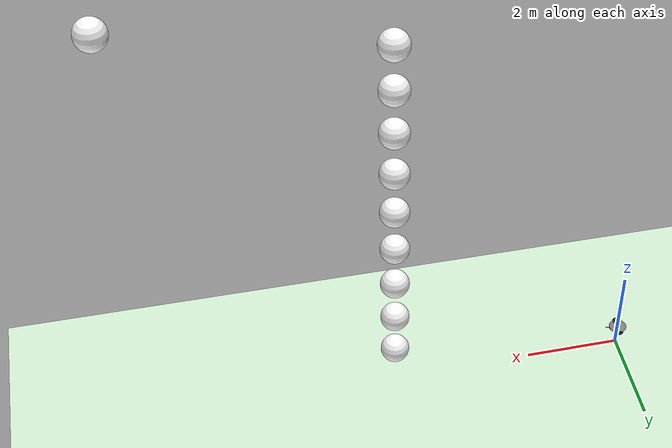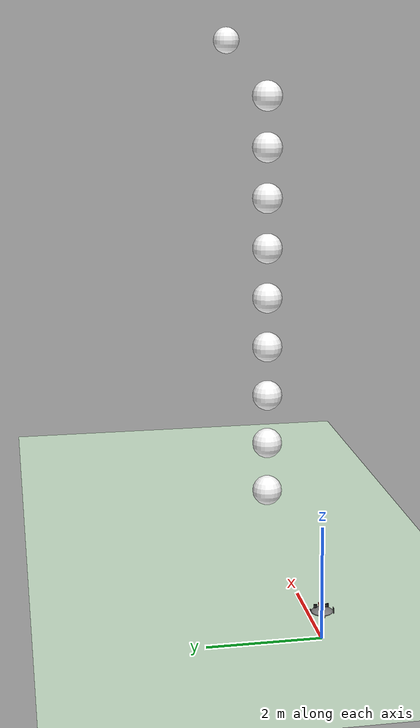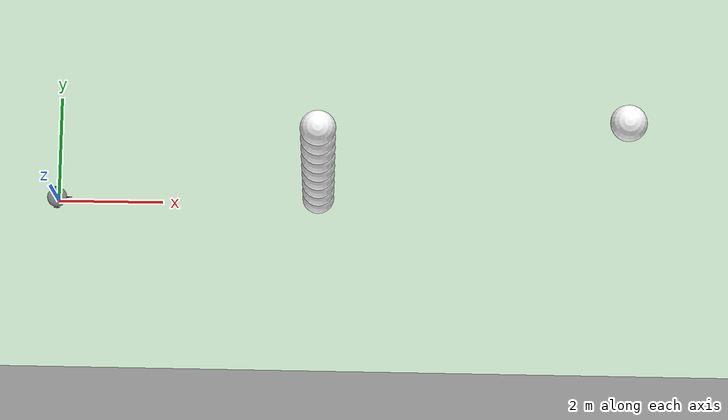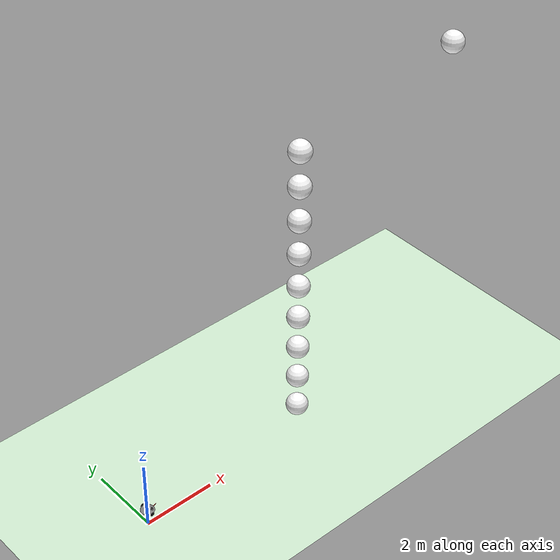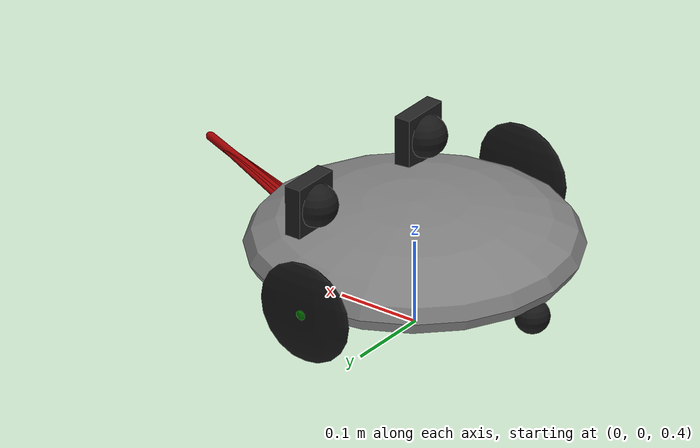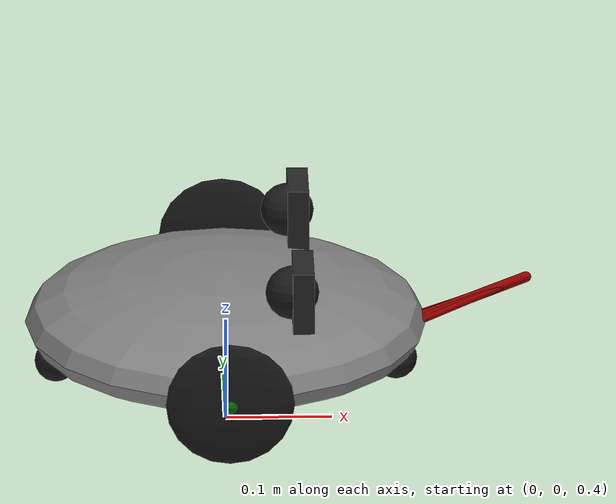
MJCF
<mujoco model="thing">
  <compiler angle="degree" coordinate="local" inertiafromgeom="true"/>
  <option integrator="RK4" />

  <default>
    <joint armature="1" damping="1" />
    <geom conaffinity="0" condim="3" density="5.0" friction="1 0.5 0.5" margin="0.01" />
  </default>

  <visual>
    <map znear="0.00001" />
  </visual>

  <asset>
    <texture builtin="gradient" height="100" rgb1="1 1 1" rgb2="0 0 0" type="skybox" width="100"/>
    <texture builtin="flat" height="1278" mark="cross" markrgb="1 1 1" name="texgeom" random="0.01" rgb1="0.8 0.6 0.4" rgb2="0.8 0.6 0.4" type="cube" width="127"/>
    <texture name="texplane" type="2d" builtin="flat" rgb1="0.6 0.5 0.25" rgb2="0.6 0.5 0.25" width="1" height="1" />
    <material name="MatPlane" texture="texplane" reflectance="0.01" shininess="0.01" specular="0.01" rgba="1 1 1 1" />
    <material name="geom" texture="texgeom" texuniform="true"/>
    <texture name="foodtexture" type="2d" file="food_texture.png"/>
    <material name="foodmaterial" reflectance="0.5" shininess="1" specular="0.2" texture="foodtexture"/>

    <material name="wheels" reflectance="0.2" shininess="0.21" specular="0.2" rgba="0.1 0.1 0.1 1"/>

  </asset>
  <worldbody>
    <light cutoff="100" diffuse="1 1 1" dir="-0 0 -1.3" directional="true" exponent="1" pos="0 0 1.3" specular=".1 .1 .1"/>
    <geom conaffinity="1" condim="3" material="MatPlane" name="floor" pos="0 0 0" rgba="0.8 0.9 0.8 1" size="40 40 40" type="plane"/>

    <body name="food_body_1" pos="5.0 0.0 1.">
      <geom rgba="1. 1. 1. 1" name="food_geom_1" type="sphere" size="0.3 0.3 0.3" density='5' contype="1" material="foodmaterial" conaffinity="1"/>
      <joint name="food_free_1" type="free" armature='0' damping="0" limited="false" frictionloss="0.2" />
    </body>

    <body name="food_body_2" pos="5.0 0.0 2.">
      <geom rgba="1. 1. 1. 1" name="food_geom_2" type="sphere" size="0.3 0.3 0.3" density='5' contype="1" material="foodmaterial" conaffinity="1"/>
      <joint name="food_free_2" type="free" armature='0' damping="0" limited="false" frictionloss="0.2" />
    </body>

    <body name="food_body_3" pos="5.0 0.0 3.">
      <geom rgba="1. 1. 1. 1" name="food_geom_3" type="sphere" size="0.3 0.3 0.3" density='5' contype="1" material="foodmaterial" conaffinity="1"/>
      <joint name="food_free_3" type="free" armature='0' damping="0" limited="false" frictionloss="0.2" />
    </body>

    <body name="food_body_4" pos="5.0 0.0 4.">
      <geom rgba="1. 1. 1. 1" name="food_geom_4" type="sphere" size="0.3 0.3 0.3" density='5' contype="1" material="foodmaterial" conaffinity="1"/>
      <joint name="food_free_4" type="free" armature='0' damping="0" limited="false" frictionloss="0.2" />
    </body>

    <body name="food_body_5" pos="5.0 0.0 5.">
      <geom rgba="1. 1. 1. 1" name="food_geom_5" type="sphere" size="0.3 0.3 0.3" density='5' contype="1" material="foodmaterial" conaffinity="1"/>
      <joint name="food_free_5" type="free" armature='0' damping="0" limited="false" frictionloss="0.2" />
    </body>

    <body name="food_body_6" pos="5.0 0.0 6.">
      <geom rgba="1. 1. 1. 1" name="food_geom_6" type="sphere" size="0.3 0.3 0.3" density='5' contype="1" material="foodmaterial" conaffinity="1"/>
      <joint name="food_free_6" type="free" armature='0' damping="0" limited="false" frictionloss="0.2" />
    </body>

    <body name="food_body_7" pos="5.0 0.0 7.">
      <geom rgba="1. 1. 1. 1" name="food_geom_7" type="sphere" size="0.3 0.3 0.3" density='5' contype="1" material="foodmaterial" conaffinity="1"/>
      <joint name="food_free_7" type="free" armature='0' damping="0" limited="false" frictionloss="0.2" />
    </body>

    <body name="food_body_8" pos="5.0 0.0 8.">
      <geom rgba="1. 1. 1. 1" name="food_geom_8" type="sphere" size="0.3 0.3 0.3" density='5' contype="1" material="foodmaterial" conaffinity="1"/>
      <joint name="food_free_8" type="free" armature='0' damping="0" limited="false" frictionloss="0.2" />
    </body>

    <body name="food_body_9" pos="5.0 0.0 9.">
      <geom rgba="1. 1. 1. 1" name="food_geom_9" type="sphere" size="0.3 0.3 0.3" density='5' contype="1" material="foodmaterial" conaffinity="1"/>
      <joint name="food_free_9" type="free" armature='0' damping="0" limited="false" frictionloss="0.2" />
    </body>

    <body name="food_body_10" pos="10.0 0.0 10.">
      <geom rgba="1. 1. 1. 1" name="food_geom_10" type="sphere" size="0.3 0.3 0.3" density='5' contype="1" material="foodmaterial" conaffinity="1"/>
      <joint name="food_free_10" type="free" armature='0' damping="0" limited="false" frictionloss="0.2" />
    </body>

    <body name="food_body_11" pos="5.0 0.0 1.">
      <geom rgba="1. 1. 1. 1" name="food_geom_11" type="sphere" size="0.3 0.3 0.3" density='5' contype="1" material="foodmaterial" conaffinity="1"/>
      <joint name="food_free_11" type="free" armature='0' damping="0" limited="false" frictionloss="0.2" />
    </body>

    <body name="food_body_12" pos="5.0 0.0 2.">
      <geom rgba="1. 1. 1. 1" name="food_geom_12" type="sphere" size="0.3 0.3 0.3" density='5' contype="1" material="foodmaterial" conaffinity="1"/>
      <joint name="food_free_12" type="free" armature='0' damping="0" limited="false" frictionloss="0.2" />
    </body>

    <body name="food_body_13" pos="5.0 0.0 3.">
      <geom rgba="1. 1. 1. 1" name="food_geom_13" type="sphere" size="0.3 0.3 0.3" density='5' contype="1" material="foodmaterial" conaffinity="1"/>
      <joint name="food_free_13" type="free" armature='0' damping="0" limited="false" frictionloss="0.2" />
    </body>

    <body name="food_body_14" pos="5.0 0.0 4.">
      <geom rgba="1. 1. 1. 1" name="food_geom_14" type="sphere" size="0.3 0.3 0.3" density='5' contype="1" material="foodmaterial" conaffinity="1"/>
      <joint name="food_free_14" type="free" armature='0' damping="0" limited="false" frictionloss="0.2" />
    </body>

    <body name="food_body_15" pos="5.0 0.0 5.">
      <geom rgba="1. 1. 1. 1" name="food_geom_15" type="sphere" size="0.3 0.3 0.3" density='5' contype="1" material="foodmaterial" conaffinity="1"/>
      <joint name="food_free_15" type="free" armature='0' damping="0" limited="false" frictionloss="0.2" />
    </body>

    <body name="food_body_16" pos="5.0 0.0 6.">
      <geom rgba="1. 1. 1. 1" name="food_geom_16" type="sphere" size="0.3 0.3 0.3" density='5' contype="1" material="foodmaterial" conaffinity="1"/>
      <joint name="food_free_16" type="free" armature='0' damping="0" limited="false" frictionloss="0.2" />
    </body>

    <body name="food_body_17" pos="5.0 0.0 7.">
      <geom rgba="1. 1. 1. 1" name="food_geom_17" type="sphere" size="0.3 0.3 0.3" density='5' contype="1" material="foodmaterial" conaffinity="1"/>
      <joint name="food_free_17" type="free" armature='0' damping="0" limited="false" frictionloss="0.2" />
    </body>

    <body name="food_body_18" pos="5.0 0.0 8.">
      <geom rgba="1. 1. 1. 1" name="food_geom_18" type="sphere" size="0.3 0.3 0.3" density='5' contype="1" material="foodmaterial" conaffinity="1"/>
      <joint name="food_free_18" type="free" armature='0' damping="0" limited="false" frictionloss="0.2" />
    </body>

    <body name="food_body_19" pos="5.0 0.0 9.">
      <geom rgba="1. 1. 1. 1" name="food_geom_19" type="sphere" size="0.3 0.3 0.3" density='5' contype="1" material="foodmaterial" conaffinity="1"/>
      <joint name="food_free_19" type="free" armature='0' damping="0" limited="false" frictionloss="0.2" />
    </body>

    <body name="food_body_20" pos="10.0 0.0 10.">
      <geom rgba="1. 1. 1. 1" name="food_geom_20" type="sphere" size="0.3 0.3 0.3" density='5' contype="1" material="foodmaterial" conaffinity="1"/>
      <joint name="food_free_20" type="free" armature='0' damping="0" limited="false" frictionloss="0.2" />
    </body>

    <body name="food_body_21" pos="5.0 0.0 1.">
      <geom rgba="1. 1. 1. 1" name="food_geom_21" type="sphere" size="0.3 0.3 0.3" density='5' contype="1" material="foodmaterial" conaffinity="1"/>
      <joint name="food_free_21" type="free" armature='0' damping="0" limited="false" frictionloss="0.2" />
    </body>

    <body name="food_body_22" pos="5.0 0.0 2.">
      <geom rgba="1. 1. 1. 1" name="food_geom_22" type="sphere" size="0.3 0.3 0.3" density='5' contype="1" material="foodmaterial" conaffinity="1"/>
      <joint name="food_free_22" type="free" armature='0' damping="0" limited="false" frictionloss="0.2" />
    </body>

    <body name="food_body_23" pos="5.0 0.0 3.">
      <geom rgba="1. 1. 1. 1" name="food_geom_23" type="sphere" size="0.3 0.3 0.3" density='5' contype="1" material="foodmaterial" conaffinity="1"/>
      <joint name="food_free_23" type="free" armature='0' damping="0" limited="false" frictionloss="0.2" />
    </body>

    <body name="food_body_24" pos="5.0 0.0 4.">
      <geom rgba="1. 1. 1. 1" name="food_geom_24" type="sphere" size="0.3 0.3 0.3" density='5' contype="1" material="foodmaterial" conaffinity="1"/>
      <joint name="food_free_24" type="free" armature='0' damping="0" limited="false" frictionloss="0.2" />
    </body>

    <body name="food_body_25" pos="5.0 0.0 5.">
      <geom rgba="1. 1. 1. 1" name="food_geom_25" type="sphere" size="0.3 0.3 0.3" density='5' contype="1" material="foodmaterial" conaffinity="1"/>
      <joint name="food_free_25" type="free" armature='0' damping="0" limited="false" frictionloss="0.2" />
    </body>

    <body name="food_body_26" pos="5.0 0.0 6.">
      <geom rgba="1. 1. 1. 1" name="food_geom_26" type="sphere" size="0.3 0.3 0.3" density='5' contype="1" material="foodmaterial" conaffinity="1"/>
      <joint name="food_free_26" type="free" armature='0' damping="0" limited="false" frictionloss="0.2" />
    </body>

    <body name="food_body_27" pos="5.0 0.0 7.">
      <geom rgba="1. 1. 1. 1" name="food_geom_27" type="sphere" size="0.3 0.3 0.3" density='5' contype="1" material="foodmaterial" conaffinity="1"/>
      <joint name="food_free_27" type="free" armature='0' damping="0" limited="false" frictionloss="0.2" />
    </body>

    <body name="food_body_28" pos="5.0 0.0 8.">
      <geom rgba="1. 1. 1. 1" name="food_geom_28" type="sphere" size="0.3 0.3 0.3" density='5' contype="1" material="foodmaterial" conaffinity="1"/>
      <joint name="food_free_28" type="free" armature='0' damping="0" limited="false" frictionloss="0.2" />
    </body>

    <body name="food_body_29" pos="5.0 0.0 9.">
      <geom rgba="1. 1. 1. 1" name="food_geom_29" type="sphere" size="0.3 0.3 0.3" density='5' contype="1" material="foodmaterial" conaffinity="1"/>
      <joint name="food_free_29" type="free" armature='0' damping="0" limited="false" frictionloss="0.2" />
    </body>

    <body name="food_body_30" pos="10.0 0.0 10.">
      <geom rgba="1. 1. 1. 1" name="food_geom_30" type="sphere" size="0.3 0.3 0.3" density='5' contype="1" material="foodmaterial" conaffinity="1"/>
      <joint name="food_free_30" type="free" armature='0' damping="0" limited="false" frictionloss="0.2" />
    </body>

    <body name="torso" pos="0 0 0.5">
      <joint armature="0" damping="0" limited="false" margin="0.01" name="root" pos="0 0 0" type="free"/>
      <geom fromto="0.18 0.0 0.0  0.282 0.0 0.041" name="beak" size="0.005" type="capsule" rgba="0.6 0.0 0.0 1"/>
      <geom fromto="0.18 +0.01 0.0  0.28 0.0 0.04" size="0.003" type="capsule" rgba="0.6 0.0 0.0 1"/>
      <geom fromto="0.18 -0.01 0.0  0.28 0.0 0.04" size="0.003" type="capsule" rgba="0.6 0.0 0.0 1"/>
      <geom fromto="0.18 +0.005 0.0  0.28 0.0 0.04" size="0.004" type="capsule" rgba="0.6 0.0 0.0 1"/>
      <geom fromto="0.18 -0.005 0.0  0.28 0.0 0.04" size="0.004" type="capsule" rgba="0.6 0.0 0.0 1"/>

      <camera name="view1" mode="fixed" pos="0.2 +0.1 0.05" xyaxes="0 -1 0 0 0 1" fovy="120" />
      <camera name="view2" mode="fixed" pos="0.2 -0.1 0.05" xyaxes="0 -1 0 0 0 1" fovy="120" />
      <geom pos="0.07 +0.1 0.07" name="gviewL" size="0.01 0.03 0.03" type="box" rgba="0.14 0.14 0.14 1"/>
      <geom pos="0.06 +0.1 0.07" name="gviewL1" size="0.025" type="sphere" rgba="0.1 0.1 0.1 1"/>
      <geom pos="0.07 -0.1 0.07" name="gviewR" size="0.01 0.03 0.03" type="box" rgba="0.14 0.14 0.14 1"/>
      <geom pos="0.06 -0.1 0.07" name="gviewR1" size="0.025" type="sphere" rgba="0.1 0.1 0.1 1"/>

      <camera name="top_view" mode="fixed" pos="-1 0 3" xyaxes="0 -1 0   0.7 0 0.3"/>

      <site name="imu" />

      <geom name="torso_geom" pos="0 0 0.0" size="0.189 0.189 0.05" density="25" type="ellipsoid"/>

      <body name="front_center_leg" pos="0.16 0 -0.0398">
        <geom name="aux_1_geom" size="0.01" type="sphere"/>
        <body name="aux_1" pos="0 0 0">
          <joint axis="0 1 0" pos="0.0 0.0 0.0" damping="0" type="hinge"/>
          <geom name="fleg_geom" size="0.01" type="sphere"  />
          <body name="aux_12" pos="0 0 0">
            <joint axis="1 0 0" pos="0.0 0.0 0.0" damping="0" type="hinge"/>
            <geom name="fleg_geom2" size="0.02" type="sphere"  friction="0" material="wheels" />
          </body>
        </body>
      </body>
      <body name="back_center_leg" pos="-0.16 0 -0.0398">
        <geom name="baux_1_geom" size="0.01" type="sphere"/>
        <body name="baux_1" pos="0 0 0">
          <joint axis="0 1 0" pos="0.0 0.0 0.0" damping="0" type="hinge"/>
          <geom name="bleg_geom" size="0.01" type="sphere"  />
          <body name="baux_12" pos="0 0 0">
            <joint axis="1 0 0" pos="0.0 0.0 0.0" damping="0" type="hinge"/>
            <geom name="bleg_geom2" size="0.02" type="sphere"  friction="0" material="wheels" />
          </body>
        </body>
      </body>

      <body name="left_leg" pos="0 0.2 0">
        <geom rgba="0 0.45 0 1" name="aux_2_geom" size="0.01" type="sphere"/>
        <body name="aux_2" pos="0 0 0">
          <joint axis="0 1 0" name="joint_bl" pos="0 0 0" type="hinge"/>
          <geom name="bleft_leg_geom" size="0.06 0.008 0.06" type="ellipsoid" friction="1" material="wheels" />
        </body>
      </body>

      <body name="right_leg" pos="0 -0.2 0">
        <geom rgba="0 0.45 0 1" name="aux_3_geom" size="0.01" type="sphere" material="wheels" />
        <body name="aux_3" pos="0 0 0">
          <joint axis="0 1 0" name="joint_br" pos="0 0 0" type="hinge"/>
          <geom name="bright_leg_geom" size="0.06 0.008 0.06" type="ellipsoid" friction="1" material="wheels" />
        </body>
      </body>
    </body>

  </worldbody>
  <actuator>
    <velocity joint="joint_bl" kv="100" ctrllimited="true" ctrlrange="-30 30"/>
    <velocity joint="joint_br" kv="100" ctrllimited="true" ctrlrange="-30 30"/>
  </actuator>

  <sensor>
    <jointpos joint="joint_bl" />
    <jointpos joint="joint_br" />
    <jointvel joint="joint_bl" />
    <jointvel joint="joint_br" />
    <gyro name="gyro" site="imu" />
    <accelerometer name="accelerometer" site="imu" />
    <magnetometer name="magnetometer" site="imu" />
  </sensor>

</mujoco>
